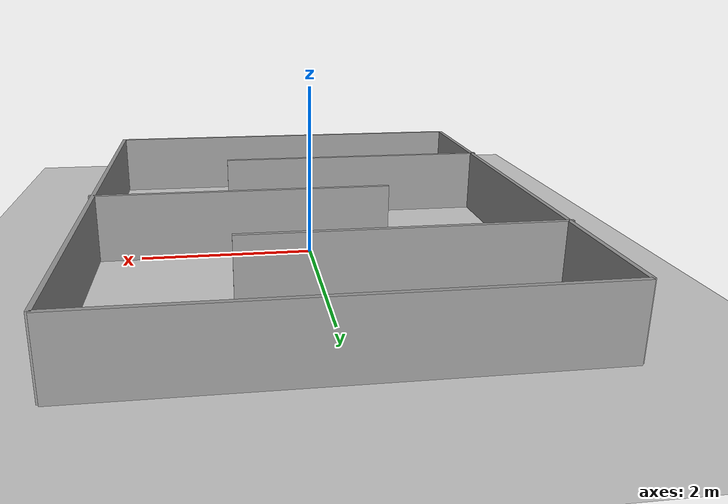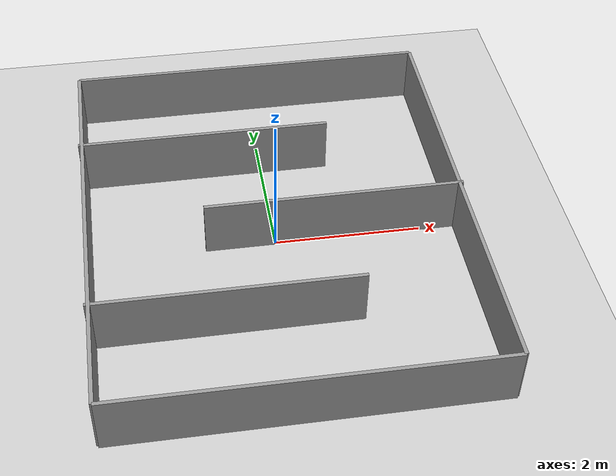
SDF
<?xml version="1.0" ?>
<sdf version="1.6">
  <world name="tight_zigzag_maze">
    <include><uri>model://ground_plane</uri></include>
    <include><uri>model://sun</uri></include>

    <model name="outer_n"><static>true</static><pose>0 3.0 0.4 0 0 0</pose>
      <link name="link">
        <collision name="c"><geometry><box><size>5 0.05 0.8</size></box></geometry></collision>
        <visual name="v"><geometry><box><size>5 0.05 0.8</size></box></geometry>
          <material><ambient>0.6 0.6 0.6 1</ambient></material></visual>
      </link>
    </model>
    <model name="outer_s"><static>true</static><pose>0 -3.0 0.4 0 0 0</pose>
      <link name="link">
        <collision name="c"><geometry><box><size>5 0.05 0.8</size></box></geometry></collision>
        <visual name="v"><geometry><box><size>5 0.05 0.8</size></box></geometry>
          <material><ambient>0.6 0.6 0.6 1</ambient></material></visual>
      </link>
    </model>
    <model name="outer_e"><static>true</static><pose>2.5 0 0.4 0 0 1.5708</pose>
      <link name="link">
        <collision name="c"><geometry><box><size>6 0.05 0.8</size></box></geometry></collision>
        <visual name="v"><geometry><box><size>6 0.05 0.8</size></box></geometry>
          <material><ambient>0.6 0.6 0.6 1</ambient></material></visual>
      </link>
    </model>
    <model name="outer_w"><static>true</static><pose>-2.5 0 0.4 0 0 1.5708</pose>
      <link name="link">
        <collision name="c"><geometry><box><size>6 0.05 0.8</size></box></geometry></collision>
        <visual name="v"><geometry><box><size>6 0.05 0.8</size></box></geometry>
          <material><ambient>0.6 0.6 0.6 1</ambient></material></visual>
      </link>
    </model>
    <model name="zz1"><static>true</static><pose>-0.8 1.5 0.4 0 0 0</pose>
      <link name="link">
        <collision name="c"><geometry><box><size>3.5 0.05 0.8</size></box></geometry></collision>
        <visual name="v"><geometry><box><size>3.5 0.05 0.8</size></box></geometry>
          <material><ambient>0.6 0.6 0.6 1</ambient></material></visual>
      </link>
    </model>
    <model name="zz2"><static>true</static><pose>0.8 0 0.4 0 0 0</pose>
      <link name="link">
        <collision name="c"><geometry><box><size>3.5 0.05 0.8</size></box></geometry></collision>
        <visual name="v"><geometry><box><size>3.5 0.05 0.8</size></box></geometry>
          <material><ambient>0.6 0.6 0.6 1</ambient></material></visual>
      </link>
    </model>
    <model name="zz3"><static>true</static><pose>-0.8 -1.5 0.4 0 0 0</pose>
      <link name="link">
        <collision name="c"><geometry><box><size>3.5 0.05 0.8</size></box></geometry></collision>
        <visual name="v"><geometry><box><size>3.5 0.05 0.8</size></box></geometry>
          <material><ambient>0.6 0.6 0.6 1</ambient></material></visual>
      </link>
    </model>
    <physics type="ode">
      <max_step_size>0.001</max_step_size>
      <real_time_factor>1</real_time_factor>
    </physics>
  </world>
</sdf>
